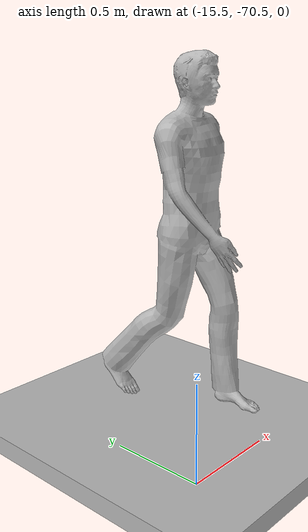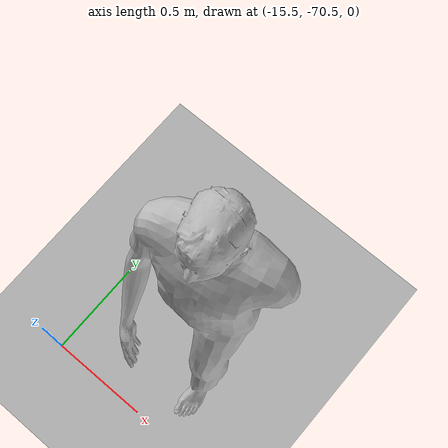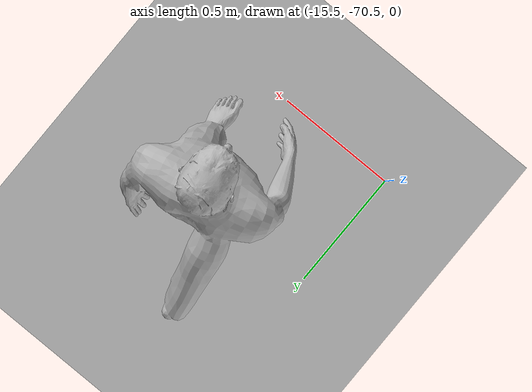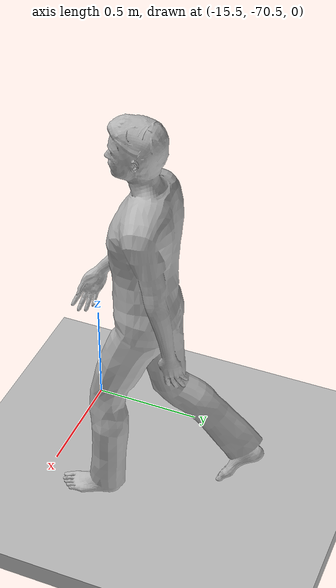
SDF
<sdf version="1.4">
 <world name="Hacienda_de_Oran_world">
  <physics type="ode">
   <ode>
    <solver><type>quick</type><iters>10</iters><sor>1.3</sor></solver>
    <constraints>
     <cfm>0</cfm>
     <erp>0.2</erp>
     <contact_max_correcting_vel>100</contact_max_correcting_vel>
     <contact_surface_layer>0.001</contact_surface_layer>
    </constraints>
   </ode>
   <max_step_size>0.004</max_step_size>
   <real_time_factor>1</real_time_factor>
   <real_time_update_rate>250</real_time_update_rate>
   <gravity>0 0 -9.8</gravity>
   <magnetic_field>6e-06 2.3e-05 -4.2e-05</magnetic_field>
  </physics>
  <include><uri>model://Hacienda_de_Oran</uri></include>
  <include><uri>model://sun</uri></include>
  <include>
   <uri>model://target</uri>
   <pose>-15.000032 -70.000164 0.05 0 0 -1.408419</pose>
   <name>target</name>
  </include>
 </world>
</sdf>

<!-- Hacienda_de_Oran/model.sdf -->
<sdf version="1.5">
  <model name="Hacienda_de_Oran">
    <static>true</static>
    <link name="floor">
      <collision name="collision">
        <geometry>
          <box>
            <size>890.09 890.09 .1</size>
          </box>
        </geometry>
      </collision>
      <visual name="visual">
        <cast_shadows>false</cast_shadows>
        <geometry>
          <box>
            <size>890.09 890.09 .1</size>
          </box>
        </geometry>
        <material>
          <script>
            <uri>model://Hacienda_de_Oran/materials/scripts</uri>
            <uri>model://Hacienda_de_Oran/materials/textures</uri>
            <name>Hacienda_de_Oran</name>
          </script>
        </material>
      </visual>
    </link>
  </model>
</sdf>

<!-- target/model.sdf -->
<sdf version="1.6">
  <model name="target">
    <link name="link">
      <inertial>
        <pose>0 0 0.95 0 0 1.57</pose>
        <mass>80.0</mass>
        <inertia>
          <ixx>27.82</ixx>
          <ixy>0</ixy>
          <ixz>0</ixz>
          <iyy>24.88</iyy>
          <iyz>0</iyz>
          <izz>4.57</izz>
        </inertia>
      </inertial>

      <collision name="bottom">
        <pose>0 0 0.01 0 0 1.57</pose>
        <geometry>
          <box>
            <size>0.35 0.75 0.02</size>
          </box>
        </geometry>
      </collision>

      <collision name="person">
        <pose>0 0 -0.02 0 0 1.57 </pose>
        <geometry>
          <mesh>
            <uri>model://target/meshes/walking.dae</uri>
          </mesh>
        </geometry>
      </collision>

      <visual name="visual">
        <pose>0 0 -0.02 0 0 1.57</pose>
        <geometry>
          <mesh>
            <uri>model://target/meshes/walking.dae</uri>
          </mesh>
        </geometry>
      </visual>
    </link>
       <plugin name="target_plugin" filename="libmultidrone_simulator.so">>
       </plugin>
  </model>
</sdf>
